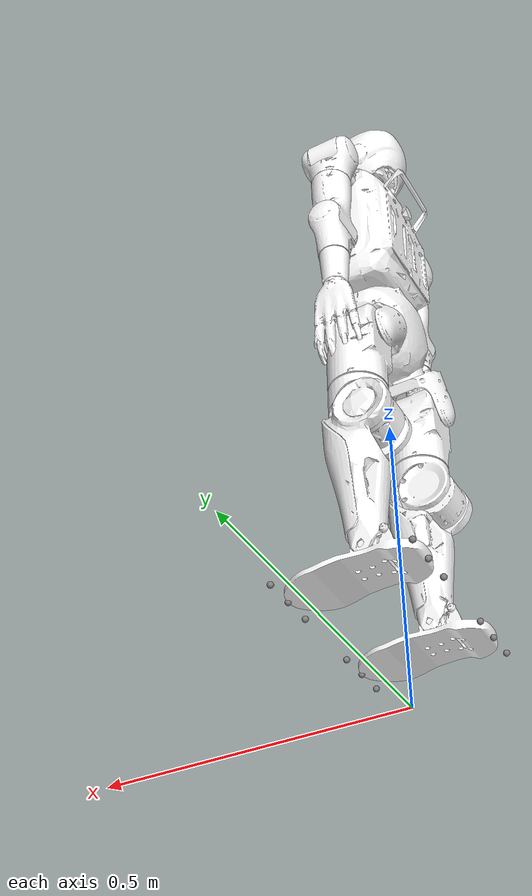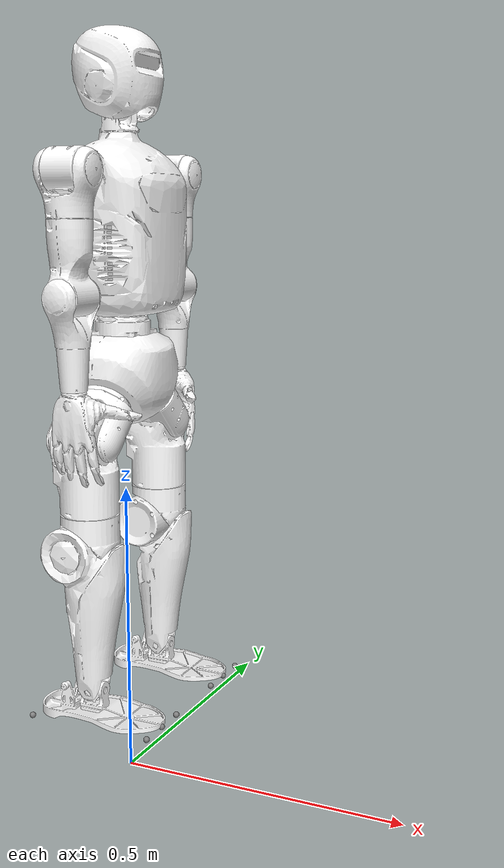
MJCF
<?xml version='1.0' encoding='utf-8'?>
<mujoco model="biped_s13">
  <compiler angle="radian" meshdir="../meshes/" />
  <size njmax="500" nconmax="100" />
  <asset>
    <mesh name="torso" file="torso.STL" />
    <mesh name="waist" file="waist.STL" />
    <mesh name="l_leg_pitch" file="l_leg_pitch.STL" />
    <mesh name="l_leg_roll" file="l_leg_roll.STL" />
    <mesh name="l_leg_yaw" file="l_leg_yaw.STL" />
    <mesh name="l_knee" file="l_knee.STL" />
    <mesh name="l_foot_pitch" file="l_foot_pitch.STL" />
    <mesh name="l_foot_roll" file="l_foot_roll_big.STL" />
    <mesh name="r_leg_pitch" file="r_leg_pitch.STL" />
    <mesh name="r_leg_roll" file="r_leg_roll.STL" />
    <mesh name="r_leg_yaw" file="r_leg_yaw.STL" />
    <mesh name="r_knee" file="r_knee.STL" />
    <mesh name="r_foot_pitch" file="r_foot_pitch.STL" />
    <mesh name="r_foot_roll" file="r_foot_roll_big.STL" />
    <mesh name="l_arm_pitch" file="l_arm_pitch.STL" />
    <mesh name="l_arm_roll" file="l_arm_roll.STL" />
    <mesh name="l_arm_yaw" file="l_arm_yaw.STL" />
    <mesh name="l_forearm_hand" file="l_forearm_hand.STL" />
    <mesh name="r_arm_pitch" file="r_arm_pitch.STL" />
    <mesh name="r_arm_roll" file="r_arm_roll.STL" />
    <mesh name="r_arm_yaw" file="r_arm_yaw.STL" />
    <mesh name="r_forearm_hand" file="r_forearm_hand.STL" />
    <mesh name="head_yaw" file="head_yaw.STL" />
    <mesh name="head_pitch" file="head_pitch.STL" />
  </asset>
  <worldbody>
    <body name="base_link" pos="0 0 0.82">
      <freejoint />
      <inertial pos="0.0016929 0 -0.118462" quat="0.707107 0.707107 0 0" mass="5.17439" diaginertia="0.0225555 0.016671 0.0153296"/>
      <geom type="mesh" contype="0" conaffinity="0" group="1" density="0" rgba="1 1 1 1" mesh="waist"/>
      <body name="leg_l1_link" pos="0 0.114335 -0.216735">
        <inertial pos="-0.0128162 -0.0241187 0.0242652" quat="0.252727 0.659724 0.296498 0.642637" mass="0.411798" diaginertia="0.00101542 0.000890533 0.000532762"/>
        <joint name="leg_l1_joint" pos="0 0 0" axis="0 0.707107 -0.707107" range="-1.65806 1.5708" actuatorfrcrange="-180 180" damping="0.2" frictionloss="0.0"/>
        <geom type="mesh" contype="0" conaffinity="0" group="1" density="0" rgba="1 1 1 1" mesh="l_leg_pitch"/>
        <body name="leg_l2_link">
          <inertial pos="-0.00113407 0.00022674 -0.055039" mass="2.60733" diaginertia="0.00748166 0.00726718 0.00283326"/>
          <joint name="leg_l2_joint" pos="0 0 0" axis="1 0 0" range="-1.0472 0.847008" actuatorfrcrange="-100 100" damping="0.2" frictionloss="0.0"/>
          <geom type="mesh" contype="0" conaffinity="0" group="1" density="0" rgba="1 1 1 1" mesh="l_leg_roll"/>
          <body name="leg_l3_link">
            <inertial pos="-0.0148641 -0.00438159 -0.175626" quat="0.707107 0 0 0.707107" mass="1.03799" diaginertia="0.00143771 0.00130665 0.00092289"/>
            <joint name="leg_l3_joint" pos="0 0 0" axis="0 0 1" range="-1.91986 0.878424" actuatorfrcrange="-100 100" damping="0.2" frictionloss="0.0"/>
            <geom type="mesh" contype="0" conaffinity="0" group="1" density="0" rgba="1 1 1 1" mesh="l_leg_yaw"/>
            <body name="leg_l4_link" pos="-0.021 0 -0.182">
              <inertial pos="0.0227641 0.00634133 -0.0971725" quat="0.707107 0 0 0.707107" mass="1.78407" diaginertia="0.00820174 0.00775509 0.00156093"/>
              <joint name="leg_l4_joint" pos="0 0 0" axis="0 1 0" range="0 2.61799" actuatorfrcrange="-180 180" damping="0.2" frictionloss="0.0"/>
              <geom type="mesh" contype="0" conaffinity="0" group="1" density="0" rgba="1 1 1 1" mesh="l_knee"/>
              <body name="leg_l5_link" pos="0.021 0 -0.235">
                <inertial pos="0 0 0" mass="0.0692377" diaginertia="6.7e-05 6.7e-05 1.172e-05"/>
                <joint name="leg_l5_joint" pos="0 0 0" axis="0 1 0" range="-0.872665 0.523599" actuatorfrcrange="-36 36" damping="0.2" frictionloss="0.0"/>
                <geom type="mesh" contype="0" conaffinity="0" group="1" density="0" rgba="1 1 1 1" mesh="l_foot_pitch"/>
                <body name="leg_l6_link">
                  <inertial pos="-0.000611525 2.7744e-05 -0.0235405" quat="-2.68642e-06 0.707507 -5.19934e-06 0.706706" mass="0.388796" diaginertia="0.00134159 0.00118448 0.000275798"/>
                  <joint name="leg_l6_joint" pos="0 0 0" axis="1 0 0" range="-0.261799 0.261799" actuatorfrcrange="-36 36" damping="0.2" frictionloss="0.0"/>
                  <geom type="mesh" contype="0" conaffinity="0" group="1" density="0" rgba="1 1 1 1" mesh="l_foot_roll"/>
                  <geom size="0.005" pos="0.126 0.05 -0.0435"/>
                  <geom size="0.005" pos="-0.089 0.05 -0.0435"/>
                  <geom size="0.005" pos="0.126 -0.05 -0.0435"/>
                  <geom size="0.005" pos="-0.089 -0.05 -0.0435"/>
                  <geom size="0.005" pos="0.126 0 -0.0435"/>
                  <geom size="0.005" pos="-0.089 0 -0.0435"/>
                </body>
              </body>
            </body>
          </body>
        </body>
      </body>
      <body name="leg_r1_link" pos="0 -0.114335 -0.216735">
        <inertial pos="-0.0128124 0.0241183 0.0242647" quat="0.642642 0.296575 0.65972 0.252634" mass="0.411907" diaginertia="0.00101558 0.000890648 0.000532861"/>
        <joint name="leg_r1_joint" pos="0 0 0" axis="0 -0.707107 -0.707107" range="-1.65806 1.5708" actuatorfrcrange="-180 180" damping="0.2" frictionloss="0.0"/>
        <geom type="mesh" contype="0" conaffinity="0" group="1" density="0" rgba="1 1 1 1" mesh="r_leg_pitch"/>
        <body name="leg_r2_link">
          <inertial pos="-0.00091249 -5.402e-05 -0.0552687" mass="2.60771" diaginertia="0.00748166 0.00726718 0.00283326"/>
          <joint name="leg_r2_joint" pos="0 0 0" axis="1 0 0" range="-1.0472 0.847008" actuatorfrcrange="-100 100" damping="0.2" frictionloss="0.0"/>
          <geom type="mesh" contype="0" conaffinity="0" group="1" density="0" rgba="1 1 1 1" mesh="r_leg_roll"/>
          <body name="leg_r3_link">
            <inertial pos="-0.0150602 0.00499577 -0.174547" quat="0.707107 0 0 0.707107" mass="1.03798" diaginertia="0.00143771 0.00130665 0.00092289"/>
            <joint name="leg_r3_joint" pos="0 0 0" axis="0 0 1" range="-1.91986 0.878424" actuatorfrcrange="-100 100" damping="0.2" frictionloss="0.0"/>
            <geom type="mesh" contype="0" conaffinity="0" group="1" density="0" rgba="1 1 1 1" mesh="r_leg_yaw"/>
            <body name="leg_r4_link" pos="-0.021 0 -0.182">
              <inertial pos="0.0227199 -0.0079271 -0.0980879" quat="0.707107 0 0 0.707107" mass="1.78444" diaginertia="0.00820174 0.00775509 0.00156093"/>
              <joint name="leg_r4_joint" pos="0 0 0" axis="0 1 0" range="0 2.61799" actuatorfrcrange="-180 180" damping="0.2" frictionloss="0.0"/>
              <geom type="mesh" contype="0" conaffinity="0" group="1" density="0" rgba="1 1 1 1" mesh="r_knee"/>
              <body name="leg_r5_link" pos="0.021 0 -0.235">
                <inertial pos="0 0 0" mass="0.0692377" diaginertia="6.7e-05 6.7e-05 1.172e-05"/>
                <joint name="leg_r5_joint" pos="0 0 0" axis="0 1 0" range="-0.872665 0.523599" actuatorfrcrange="-36 36" damping="0.2" frictionloss="0.0"/>
                <geom type="mesh" contype="0" conaffinity="0" group="1" density="0" rgba="1 1 1 1" mesh="r_foot_pitch"/>
                <body name="leg_r6_link">
                  <inertial pos="-0.000599244 -2.64345e-05 -0.0235552" quat="3.74973e-06 0.707507 3.75398e-06 0.706706" mass="0.388521" diaginertia="0.00134159 0.00118447 0.000275796"/>
                  <joint name="leg_r6_joint" pos="0 0 0" axis="1 0 0" range="-0.261799 0.261799" actuatorfrcrange="-36 36" damping="0.2" frictionloss="0.0"/>
                  <geom type="mesh" contype="0" conaffinity="0" group="1" density="0" rgba="1 1 1 1" mesh="r_foot_roll"/>
                  <geom size="0.005" pos="0.126 0.05 -0.0435"/>
                  <geom size="0.005" pos="-0.089 0.05 -0.0435"/>
                  <geom size="0.005" pos="0.126 -0.05 -0.0435"/>
                  <geom size="0.005" pos="-0.089 -0.05 -0.0435"/>
                  <geom size="0.005" pos="0.126 0 -0.0435"/>
                  <geom size="0.005" pos="-0.089 0 -0.0435"/>
                </body>
              </body>
            </body>
          </body>
        </body>
      </body>
      <body name="waist_yaw" pos="0.0 0.0 -0.0">
        <site name="imu" pos="0 0 0" />
        <inertial pos="0.00227055 0 0.116357" mass="4.09459" diaginertia="0.0635602 0.0531495 0.0343499"/>
        <joint name="waist_yaw_joint" pos="0 0 0" axis="0 0 1" range="-2.0944 2.0944" actuatorfrcrange="-50 50" damping="0.02" frictionloss="0.0"/>
        <geom type="mesh" contype="0" conaffinity="0" group="1" density="0" rgba="1 1 1 1" mesh="torso"/>
        <body name="zarm_l1_link" pos="0.00734742 0.162504 0.202427">
          <inertial pos="0.00335591 -0.00249177 1.895e-05" quat="0.730041 0.438009 -0.175214 0.494458" mass="0.444918" diaginertia="0.000360065 0.00026323 0.000192115" />
          <joint name="zarm_l1_joint" pos="0 0 0" axis="0 1 0" range="-3.14159 2.0944" actuatorfrcrange="-12 12" damping="0.2" frictionloss="0.0" />
          <geom type="mesh" contype="0" conaffinity="0" group="1" density="0" rgba="1 1 1 1" mesh="l_arm_pitch" />
          <body name="zarm_l2_link">
            <inertial pos="0.00025941 0 -0.0368458" quat="0.660165 0.253342 0.253342 0.660165" mass="0.259844" diaginertia="0.00043526 0.000377904 0.000253216" />
            <joint name="zarm_l2_joint" pos="0 0 0" axis="1 0 0" range="-0.349066 3.49066" actuatorfrcrange="-12 12" damping="0.2" frictionloss="0.0" />
            <geom type="mesh" contype="0" conaffinity="0" group="1" density="0" rgba="1 1 1 1" mesh="l_arm_roll" />
            <body name="zarm_l3_link">
              <inertial pos="-0.0001383 -0.00323921 -0.143148" quat="0.961534 -0.0369404 -0.000118226 -0.272192" mass="0.774066" diaginertia="0.0020332 0.00197983 0.000420206" />
              <joint name="zarm_l3_joint" pos="0 0 0" axis="0 0 1" range="-1.5708 1.5708" actuatorfrcrange="-12 12" damping="0.2" frictionloss="0.0" />
              <geom type="mesh" contype="0" conaffinity="0" group="1" density="0" rgba="1 1 1 1" mesh="l_arm_yaw" />
              <body name="zarm_l4_link" pos="0 0 -0.188">
                <inertial pos="0.00775528 -0.00671391 -0.180389" quat="0.707139 -1.0418e-05 -1.31646e-06 0.707074" mass="0.483726" diaginertia="0.00338102 0.00308564 0.00054063"/>
                <joint name="zarm_l4_joint" pos="0 0 0" axis="0 1 0" range="-2.26893 0" actuatorfrcrange="-12 12" damping="0.2" frictionloss="0.0"/>
                <geom type="mesh" contype="0" conaffinity="0" group="1" density="0" rgba="1 1 1 1" mesh="l_forearm_hand"/>
                <geom size="0.005" pos="0 0 -0.17" />
              </body>
            </body>
          </body>
        </body>
        <body name="zarm_r1_link" pos="0.00734742 -0.162504 0.202427">
          <inertial pos="0.00335581 0.00249177 1.809e-05" quat="0.462957 0.728208 -0.478888 0.161401" mass="0.444917" diaginertia="0.000353059 0.000261187 0.000201144" />
          <joint name="zarm_r1_joint" pos="0 0 0" axis="0 1 0" range="-3.14159 2.0944" actuatorfrcrange="-12 12" damping="0.2" frictionloss="0.0" />
          <geom type="mesh" contype="0" conaffinity="0" group="1" density="0" rgba="1 1 1 1" mesh="r_arm_pitch" />
          <body name="zarm_r2_link">
            <inertial pos="0.0002594 0 -0.0368456" quat="0.660165 0.253342 0.253342 0.660165" mass="0.259835" diaginertia="0.00043526 0.000377894 0.000253206" />
            <joint name="zarm_r2_joint" pos="0 0 0" axis="1 0 0" range="-3.49066 0.349066" actuatorfrcrange="-12 12" damping="0.2" frictionloss="0.0" />
            <geom type="mesh" contype="0" conaffinity="0" group="1" density="0" rgba="1 1 1 1" mesh="r_arm_roll" />
            <body name="zarm_r3_link">
              <inertial pos="-0.00013784 0.00323927 -0.143149" quat="0.961558 0.0369378 -0.000114261 0.272107" mass="0.774042" diaginertia="0.00203317 0.0019798 0.000420188" />
              <joint name="zarm_r3_joint" pos="0 0 0" axis="0 0 1" range="-1.5708 1.5708" actuatorfrcrange="-12 12" damping="0.2" frictionloss="0.0" />
              <geom type="mesh" contype="0" conaffinity="0" group="1" density="0" rgba="1 1 1 1" mesh="r_arm_yaw" />
              <body name="zarm_r4_link" pos="0 0 -0.188">
                <inertial pos="0.00775528 0.00671391 -0.180389" quat="0.707074 -1.31646e-06 -1.0418e-05 0.707139" mass="0.483726" diaginertia="0.00338102 0.00308564 0.00054063"/>
                <joint name="zarm_r4_joint" pos="0 0 0" axis="0 1 0" range="-2.26893 0" actuatorfrcrange="-12 12" damping="0.2" frictionloss="0.0"/>
                <geom type="mesh" contype="0" conaffinity="0" group="1" density="0" rgba="1 1 1 1" mesh="r_forearm_hand"/>
                <geom size="0.005" pos="0 0 -0.17" />
              </body>
            </body>
          </body>
        </body>
        <body name="zhead_1_link" pos="0 0 0.331282">
          <inertial pos="-2.17e-06 0 0" mass="0.860017" diaginertia="0.00182827 0.00158462 0.00060882"/>
          <joint name="zhead_1_joint" pos="0 0 0" axis="0 0 1" range="-1.5708 1.5708" actuatorfrcrange="-50 50" damping="0.2" frictionloss="0.0" />
          <geom type="mesh" contype="0" conaffinity="0" group="1" density="0" rgba="1 1 1 1" mesh="head_yaw" />
          <body name="zhead_2_link">
            <inertial pos="0.0148398 -0.0004003 0.0312702" quat="0 0.707107 0 0.707107" mass="0.3542" diaginertia="0.00114126 0.00095408 0.00092946" />
            <joint name="zhead_2_joint" pos="0 0 0" axis="0 1 0" range="0 0.523599" actuatorfrcrange="-50 50" damping="0.2" frictionloss="0.0" />
            <geom type="mesh" contype="0" conaffinity="0" group="1" density="0" rgba="1 1 1 1" mesh="head_pitch" />
          </body>
        </body>
      </body>
    </body>
  </worldbody>
  <actuator>
    <motor gear="1" joint="leg_l1_joint" name="leg_l1_joint_motor" ctrllimited="true" ctrlrange="-180 180" />
    <motor gear="1" joint="leg_l2_joint" name="leg_l2_joint_motor" ctrllimited="true" ctrlrange="-100 100" />
    <motor gear="1" joint="leg_l3_joint" name="leg_l3_joint_motor" ctrllimited="true" ctrlrange="-100 100" />
    <motor gear="1" joint="leg_l4_joint" name="leg_l4_joint_motor" ctrllimited="true" ctrlrange="-180 180" />
    <motor gear="1" joint="leg_l5_joint" name="leg_l5_joint_motor" ctrllimited="true" ctrlrange="-36 36" />
    <motor gear="1" joint="leg_l6_joint" name="leg_l6_joint_motor" ctrllimited="true" ctrlrange="-36 36" />
    <motor gear="1" joint="leg_r1_joint" name="leg_r1_joint_motor" ctrllimited="true" ctrlrange="-180 180" />
    <motor gear="1" joint="leg_r2_joint" name="leg_r2_joint_motor" ctrllimited="true" ctrlrange="-100 100" />
    <motor gear="1" joint="leg_r3_joint" name="leg_r3_joint_motor" ctrllimited="true" ctrlrange="-100 100" />
    <motor gear="1" joint="leg_r4_joint" name="leg_r4_joint_motor" ctrllimited="true" ctrlrange="-180 180" />
    <motor gear="1" joint="leg_r5_joint" name="leg_r5_joint_motor" ctrllimited="true" ctrlrange="-36 36" />
    <motor gear="1" joint="leg_r6_joint" name="leg_r6_joint_motor" ctrllimited="true" ctrlrange="-36 36" />
    <motor gear="1" joint="waist_yaw_joint" name="waist_yaw_joint_motor" ctrllimited="true" ctrlrange="-50 50" />
    <motor gear="1" joint="zarm_l1_joint" name="zarm_l1_joint_motor" ctrllimited="true" ctrlrange="-12 12" />
    <motor gear="1" joint="zarm_l2_joint" name="zarm_l2_joint_motor" ctrllimited="true" ctrlrange="-12 12" />
    <motor gear="1" joint="zarm_l3_joint" name="zarm_l3_joint_motor" ctrllimited="true" ctrlrange="-12 12" />
    <motor gear="1" joint="zarm_l4_joint" name="zarm_l4_joint_motor" ctrllimited="true" ctrlrange="-12 12" />
    <motor gear="1" joint="zarm_r1_joint" name="zarm_r1_joint_motor" ctrllimited="true" ctrlrange="-12 12" />
    <motor gear="1" joint="zarm_r2_joint" name="zarm_r2_joint_motor" ctrllimited="true" ctrlrange="-12 12" />
    <motor gear="1" joint="zarm_r3_joint" name="zarm_r3_joint_motor" ctrllimited="true" ctrlrange="-12 12" />
    <motor gear="1" joint="zarm_r4_joint" name="zarm_r4_joint_motor" ctrllimited="true" ctrlrange="-12 12" />
    <motor gear="1" joint="zhead_1_joint" name="zhead_1_joint_motor" ctrllimited="true" ctrlrange="-50 50" />
    <motor gear="1" joint="zhead_2_joint" name="zhead_2_joint_motor" ctrllimited="true" ctrlrange="-50 50" />
  </actuator>
  <sensor>
    <accelerometer name="BodyAcc" site="imu" />
    <velocimeter name="BodyVel" site="imu" />
    <gyro name="BodyGyro" site="imu" />
    <framepos name="BodyPos" objtype="site" objname="imu" />
    <framequat name="BodyQuat" objtype="site" objname="imu" />
    <jointpos name="leg_l1_joint_pos" joint="leg_l1_joint" />
    <jointpos name="leg_l2_joint_pos" joint="leg_l2_joint" />
    <jointpos name="leg_l3_joint_pos" joint="leg_l3_joint" />
    <jointpos name="leg_l4_joint_pos" joint="leg_l4_joint" />
    <jointpos name="leg_l5_joint_pos" joint="leg_l5_joint" />
    <jointpos name="leg_l6_joint_pos" joint="leg_l6_joint" />
    <jointpos name="leg_r1_joint_pos" joint="leg_r1_joint" />
    <jointpos name="leg_r2_joint_pos" joint="leg_r2_joint" />
    <jointpos name="leg_r3_joint_pos" joint="leg_r3_joint" />
    <jointpos name="leg_r4_joint_pos" joint="leg_r4_joint" />
    <jointpos name="leg_r5_joint_pos" joint="leg_r5_joint" />
    <jointpos name="leg_r6_joint_pos" joint="leg_r6_joint" />
    <jointpos name="waist_yaw_joint_pos" joint="waist_yaw_joint" />
    <jointpos name="zarm_l1_joint_pos" joint="zarm_l1_joint" />
    <jointpos name="zarm_l2_joint_pos" joint="zarm_l2_joint" />
    <jointpos name="zarm_l3_joint_pos" joint="zarm_l3_joint" />
    <jointpos name="zarm_l4_joint_pos" joint="zarm_l4_joint" />
    <jointpos name="zarm_r1_joint_pos" joint="zarm_r1_joint" />
    <jointpos name="zarm_r2_joint_pos" joint="zarm_r2_joint" />
    <jointpos name="zarm_r3_joint_pos" joint="zarm_r3_joint" />
    <jointpos name="zarm_r4_joint_pos" joint="zarm_r4_joint" />
    <jointpos name="zhead_1_joint_pos" joint="zhead_1_joint" />
    <jointpos name="zhead_2_joint_pos" joint="zhead_2_joint" />
    <jointvel name="leg_l1_joint_vel" joint="leg_l1_joint" />
    <jointvel name="leg_l2_joint_vel" joint="leg_l2_joint" />
    <jointvel name="leg_l3_joint_vel" joint="leg_l3_joint" />
    <jointvel name="leg_l4_joint_vel" joint="leg_l4_joint" />
    <jointvel name="leg_l5_joint_vel" joint="leg_l5_joint" />
    <jointvel name="leg_l6_joint_vel" joint="leg_l6_joint" />
    <jointvel name="leg_r1_joint_vel" joint="leg_r1_joint" />
    <jointvel name="leg_r2_joint_vel" joint="leg_r2_joint" />
    <jointvel name="leg_r3_joint_vel" joint="leg_r3_joint" />
    <jointvel name="leg_r4_joint_vel" joint="leg_r4_joint" />
    <jointvel name="leg_r5_joint_vel" joint="leg_r5_joint" />
    <jointvel name="leg_r6_joint_vel" joint="leg_r6_joint" />
    <jointvel name="waist_yaw_joint_vel" joint="waist_yaw_joint" />
    <jointvel name="zarm_l1_joint_vel" joint="zarm_l1_joint" />
    <jointvel name="zarm_l2_joint_vel" joint="zarm_l2_joint" />
    <jointvel name="zarm_l3_joint_vel" joint="zarm_l3_joint" />
    <jointvel name="zarm_l4_joint_vel" joint="zarm_l4_joint" />
    <jointvel name="zarm_r1_joint_vel" joint="zarm_r1_joint" />
    <jointvel name="zarm_r2_joint_vel" joint="zarm_r2_joint" />
    <jointvel name="zarm_r3_joint_vel" joint="zarm_r3_joint" />
    <jointvel name="zarm_r4_joint_vel" joint="zarm_r4_joint" />
    <jointvel name="zhead_1_joint_vel" joint="zhead_1_joint" />
    <jointvel name="zhead_2_joint_vel" joint="zhead_2_joint" />
  </sensor>
</mujoco>
